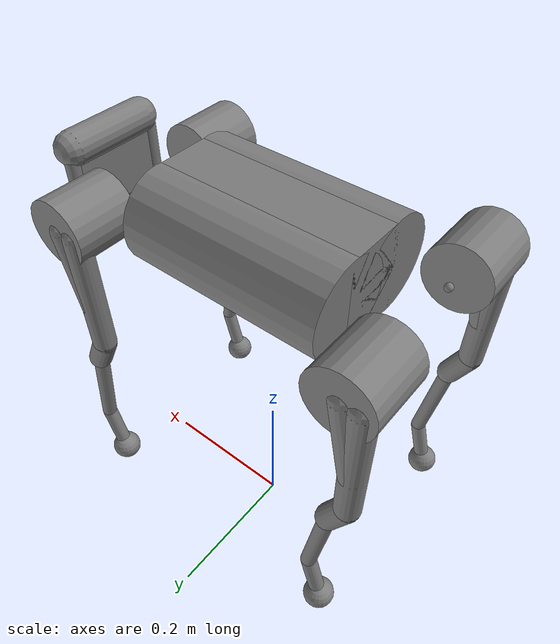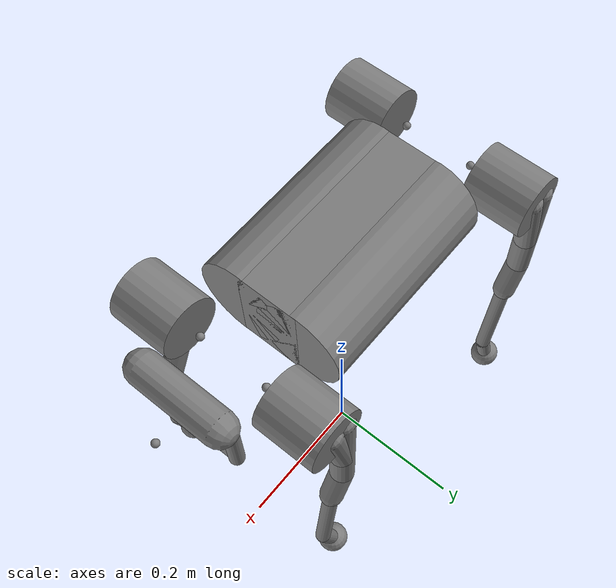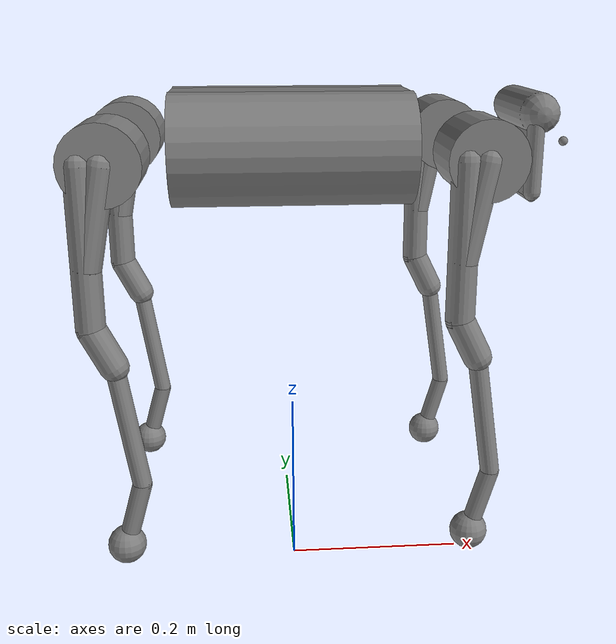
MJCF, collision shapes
<mujoco model="Unitree A1">
  <compiler angle="radian" meshdir="assets" texturedir="assets"/>

  <option cone="elliptic" impratio="10"/>

  <default>
    <default class="a1">
      <geom friction="0.6" margin="0.001" condim="1"/>
      <joint axis="0 1 0" damping="2" armature="0.01" frictionloss="0.2" limited="true"/>
      <position kp="50" ctrllimited="true" forcelimited="true" forcerange="-33.5 33.5"/>
      <default class="abduction">
        <joint axis="1 0 0" damping="1" range="-0.802851 0.802851"/>
        <position ctrlrange="-0.802851 0.802851"/>
      </default>
      <default class="hip">
        <joint range="-1.9472 3.28879" ref="-0.9"/>
        <position ctrlrange="-1.9472 3.28879"/>
      </default>
      <default class="knee">
        <joint range="-0.89653 0.883702" ref="1.8"/>
        <position ctrlrange="-0.89653 0.883702"/>
      </default>
      <default class="visual">
        <geom type="mesh" contype="0" conaffinity="0" group="2" material="dark"/>
      </default>
      <default class="collision">
        <geom group="3" type="capsule"/>
        <default class="hip_left">
          <geom size="0.04 0.04" quat="1 1 0 0" type="cylinder" pos="0 0.055 0"/>
        </default>
        <default class="hip_right">
          <geom size="0.04 0.04" quat="1 1 0 0" type="cylinder" pos="0 -0.055 0"/>
        </default>
        <default class="thigh1">
          <geom size="0.015" fromto="-0.02 0 0 -0.02 0 -0.16"/>
        </default>
        <default class="thigh2">
          <geom size="0.015" fromto="0 0 0 -0.02 0 -0.1"/>
        </default>
        <default class="thigh3">
          <geom size="0.015" fromto="-0.02 0 -0.16 0 0 -0.2"/>
        </default>
        <default class="calf1">
          <geom size="0.01" fromto="0 0 0 0.02 0 -0.13"/>
        </default>
        <default class="calf2">
          <geom size="0.01" fromto="0.02 0 -0.13 0 0 -0.2"/>
        </default>
        <default class="foot">
          <geom type="sphere" size="0.02" pos="0 0 -0.2" priority="1" solimp="0.015 1 0.031"
              condim="6" friction="0.8 0.02 0.01"/>
        </default>
      </default>
    </default>
  </default>

  <asset>
    <material name="dark" specular="0" shininess="0.25" rgba="0.2 0.2 0.2 1"/>
    <texture type="2d" name="trunk_A1" file="trunk_A1.png"/>
    <material name="carbonfibre" texture="trunk_A1" specular="0" shininess="0.25"/>

    <mesh class="a1" file="calf.obj"/>
    <mesh class="a1" file="hip.obj"/>
    <mesh class="a1" file="thigh.obj"/>
    <mesh class="a1" file="thigh_mirror.obj"/>
    <mesh class="a1" file="trunk.obj"/>
  </asset>

  <worldbody>
    <body name="trunk" pos="0.0 0.0 0.5" quat="1 0 0 0" childclass="a1">
      <light pos="0 0 5" mode="trackcom" diffuse="0.8 0.8 0.8"/>
      <site name="trunk_site"/>
      <site name="head" pos=".3 0 0"/>
      <freejoint name="trunk"/>
      <inertial mass="4.713" pos="0 0.0041 -0.0005"
          fullinertia="0.0158533 0.0377999 0.0456542 -3.66e-05 -6.11e-05 -2.75e-05"/>
      <geom class="visual" mesh="trunk" material="carbonfibre"/>
      <geom class="collision" size="0.125 0.04 0.057" type="box"/>
      <geom class="collision" quat="1 0 1 0" pos="0 -0.04 0" size="0.058 0.125" type="cylinder"/>
      <geom class="collision" quat="1 0 1 0" pos="0 +0.04 0" size="0.058 0.125" type="cylinder"/>
      <geom class="collision" pos="0.25 0 0" size="0.005 0.06 0.05" type="box"/>
      <geom class="collision" pos="0.25 0.06 -0.01" size="0.009 0.035"/>
      <geom class="collision" pos="0.25 -0.06 -0.01" size="0.009 0.035"/>
      <geom class="collision" pos="0.25 0 -0.05" size="0.005 0.06" quat="1 1 0 0"/>
      <geom class="collision" pos="0.255 0 0.0355" size="0.021 0.052" quat="1 1 0 0"/>
      <body name="FR_hip" pos="0.183 -0.047 0">
        <site name="FR_hip_site"/>
        <inertial mass="0.696" pos="-0.003311 -0.000635 3.1e-05"
            quat="0.507528 0.506268 0.491507 0.494499"
            diaginertia="0.000807752 0.00055293 0.000468983"/>
        <joint class="abduction" name="FR_hip_joint"/>
        <geom class="visual" mesh="hip" quat="0 1 0 0"/>
        <geom class="hip_right"/>
        <body name="FR_thigh" pos="0 -0.08505 0">
          <site name="FR_thigh_site"/>
          <inertial mass="1.013" pos="-0.003237 0.022327 -0.027326"
              quat="0.999125 -0.00256393 -0.0409531 -0.00806091"
              diaginertia="0.00555739 0.00513936 0.00133944"/>
          <joint class="hip" name="FR_thigh_joint"/>
          <geom class="visual" mesh="thigh_mirror"/>
          <geom class="thigh1"/>
          <geom class="thigh2"/>
          <geom class="thigh3"/>
          <!-- Add mass to FR_calf -->
          <body name="Lump1" pos="0 0 -0.2">
            <inertial mass="5" pos="0 0 0" quat="1 0 0 0"/>
          </body>
          <body name="FR_calf" pos="0 0 -0.2">
            <site name="FR_calf_site"/>
            <inertial mass="0.226" pos="0.00472659 0 -0.131975"
                quat="0.706886 0.017653 0.017653 0.706886"
                diaginertia="0.00340344 0.00339393 3.54834e-05"/>
            <joint class="knee" name="FR_calf_joint"/>
            <geom class="visual" mesh="calf"/>
            <geom class="calf1"/>
            <geom name="FR_foot_collision" class="calf2"/>
            <geom name="FR_foot" class="foot"/>
            <site name="FR_foot_site" pos="0 0 -0.2" type="sphere" size=".015"/>
            <!-- Add mass to FR_foot -->
            <body name="Lump2" pos="0 0 -0.2">
              <inertial mass="5" pos="0 0 0" quat="1 0 0 0"/>
            </body>
          </body>
        </body>
      </body>
      <body name="FL_hip" pos="0.183 0.047 0">
        <site name="FL_hip_site"/>
        <inertial mass="0.696" pos="-0.003311 0.000635 3.1e-05"
            quat="0.494499 0.491507 0.506268 0.507528"
            diaginertia="0.000807752 0.00055293 0.000468983"/>
        <joint class="abduction" name="FL_hip_joint"/>
        <geom class="visual" mesh="hip"/>
        <geom class="hip_left"/>
        <geom class="collision" size="0.04 0.04" pos="0 0.055 0" quat="1 1 0 0" type="cylinder"/>
        <body name="FL_thigh" pos="0 0.08505 0">
          <site name="FL_thigh_site"/>
          <inertial mass="1.013" pos="-0.003237 -0.022327 -0.027326"
              quat="0.999125 0.00256393 -0.0409531 0.00806091"
              diaginertia="0.00555739 0.00513936 0.00133944"/>
          <joint class="hip" name="FL_thigh_joint"/>
          <geom class="visual" mesh="thigh"/>
          <geom class="thigh1"/>
          <geom class="thigh2"/>
          <geom class="thigh3"/>
          <body name="FL_calf" pos="0 0 -0.2">
            <site name="FL_calf_site"/>
            <inertial mass="0.226" pos="0.00472659 0 -0.131975"
                quat="0.706886 0.017653 0.017653 0.706886"
                diaginertia="0.00340344 0.00339393 3.54834e-05"/>
            <joint class="knee" name="FL_calf_joint"/>
            <geom class="visual" mesh="calf"/>
            <geom class="calf1"/>
            <geom name="FL_foot_collision" class="calf2"/>
            <geom name="FL_foot" class="foot"/>
            <site name="FL_foot_site" pos="0 0 -0.2" type="sphere" size=".015"/>
          </body>
        </body>
      </body>
      <body name="RR_hip" pos="-0.183 -0.047 0">
        <site name="RR_hip_site"/>
        <inertial mass="0.696" pos="0.003311 -0.000635 3.1e-05"
            quat="0.491507 0.494499 0.507528 0.506268"
            diaginertia="0.000807752 0.00055293 0.000468983"/>
        <joint class="abduction" name="RR_hip_joint"/>
        <geom class="visual" quat="0 0 0 -1" mesh="hip"/>
        <geom class="hip_right"/>
        <body name="RR_thigh" pos="0 -0.08505 0">
          <site name="RR_thigh_site"/>
          <inertial mass="1.013" pos="-0.003237 0.022327 -0.027326"
              quat="0.999125 -0.00256393 -0.0409531 -0.00806091"
              diaginertia="0.00555739 0.00513936 0.00133944"/>
          <joint class="hip" name="RR_thigh_joint"/>
          <geom class="visual" mesh="thigh_mirror"/>
          <geom class="thigh1"/>
          <geom class="thigh2"/>
          <geom class="thigh3"/>
          <body name="RR_calf" pos="0 0 -0.2">
            <site name="RR_calf_site"/>
            <inertial mass="0.226" pos="0.00472659 0 -0.131975"
                quat="0.706886 0.017653 0.017653 0.706886"
                diaginertia="0.00340344 0.00339393 3.54834e-05"/>
            <joint class="knee" name="RR_calf_joint"/>
            <geom class="visual" mesh="calf"/>
            <geom class="calf1"/>
            <geom name="RR_foot_collision" class="calf2"/>
            <geom name="RR_foot" class="foot"/>
            <site name="RR_foot_site" pos="0 0 -0.2" type="sphere" size=".015"/>
          </body>
        </body>
      </body>
      <body name="RL_hip" pos="-0.183 0.047 0">
        <site name="RL_hip_site"/>
        <inertial mass="0.696" pos="0.003311 0.000635 3.1e-05"
            quat="0.506268 0.507528 0.494499 0.491507"
            diaginertia="0.000807752 0.00055293 0.000468983"/>
        <joint class="abduction" name="RL_hip_joint"/>
        <geom class="visual" quat="0 0 1 0" mesh="hip"/>
        <geom class="hip_left"/>
        <body name="RL_thigh" pos="0 0.08505 0">
          <site name="RL_thigh_site"/>
          <inertial mass="1.013" pos="-0.003237 -0.022327 -0.027326"
              quat="0.999125 0.00256393 -0.0409531 0.00806091"
              diaginertia="0.00555739 0.00513936 0.00133944"/>
          <joint class="hip" name="RL_thigh_joint"/>
          <geom class="visual" mesh="thigh"/>
          <geom class="thigh1"/>
          <geom class="thigh2"/>
          <geom class="thigh3"/>
          <body name="RL_calf" pos="0 0 -0.2">
            <site name="RL_calf_site"/>
            <inertial mass="0.226" pos="0.00472659 0 -0.131975"
                quat="0.706886 0.017653 0.017653 0.706886"
                diaginertia="0.00340344 0.00339393 3.54834e-05"/>
            <joint class="knee" name="RL_calf_joint"/>
            <geom class="visual" mesh="calf"/>
            <geom class="calf1"/>
            <geom name="RL_foot_collision" class="calf2"/>
            <geom name="RL_foot" class="foot"/>
            <site name="RL_foot_site" pos="0 0 -0.2" type="sphere" size=".015"/>
          </body>
        </body>
      </body>
    </body>
  </worldbody>
</mujoco>
